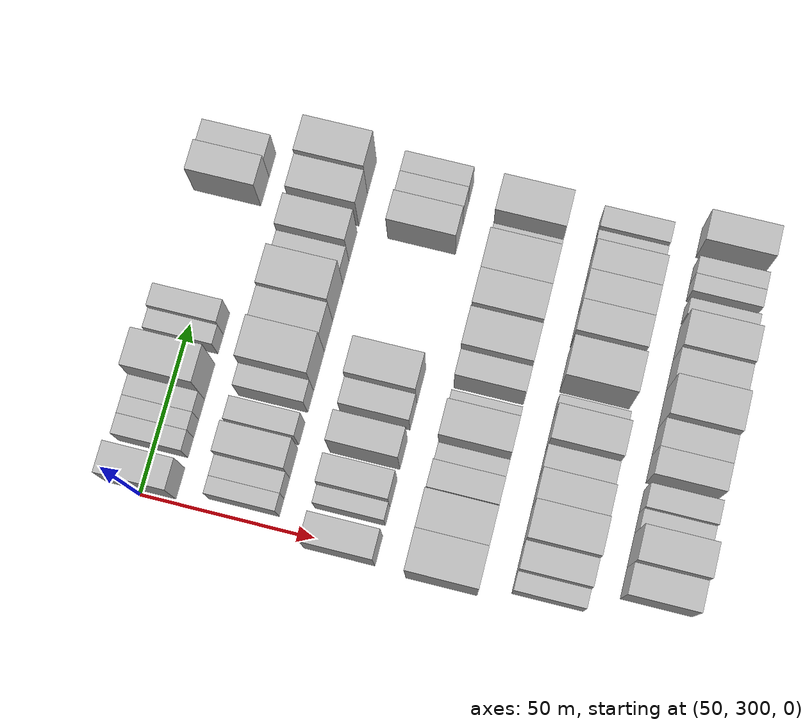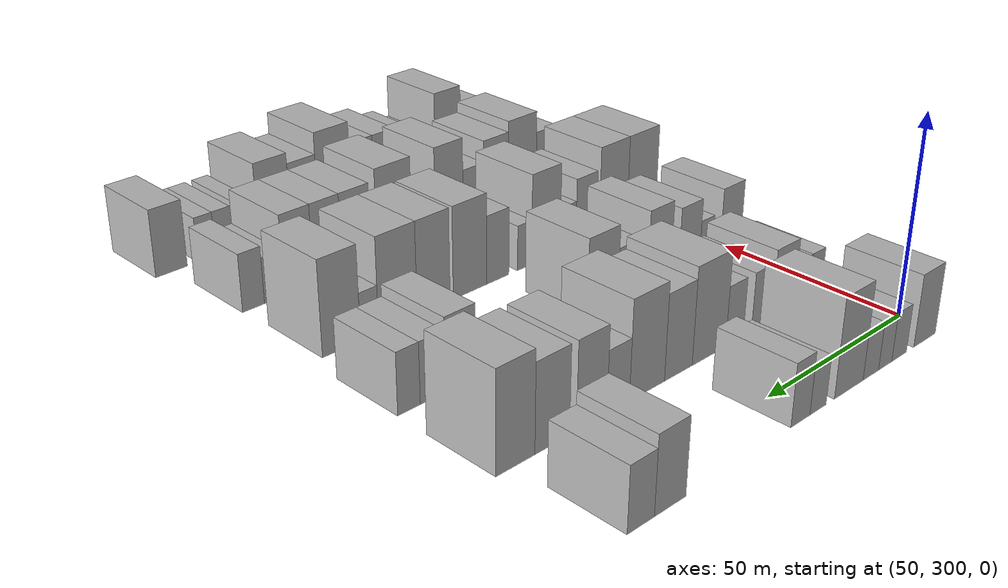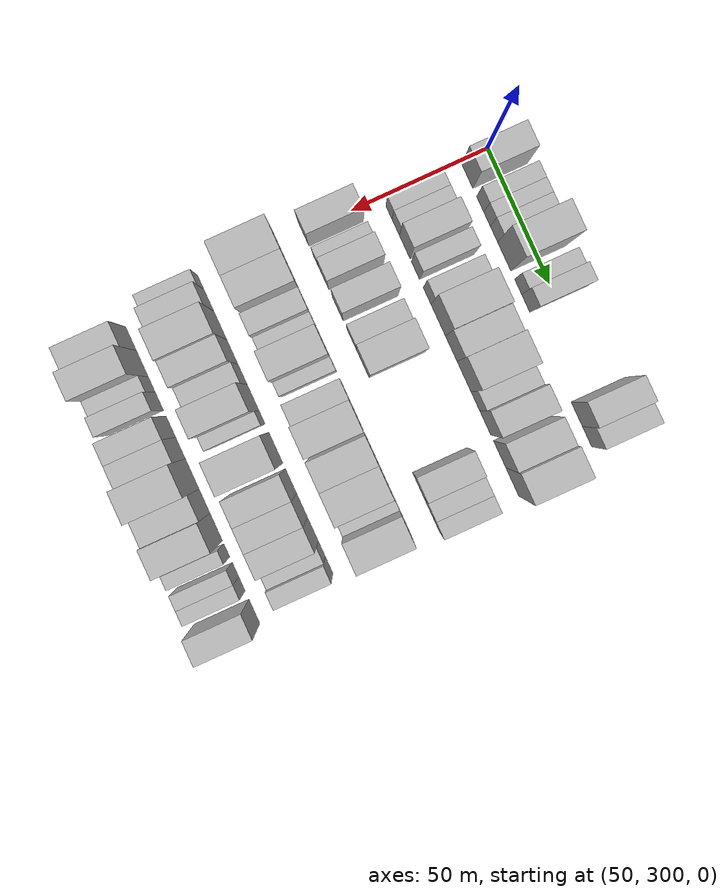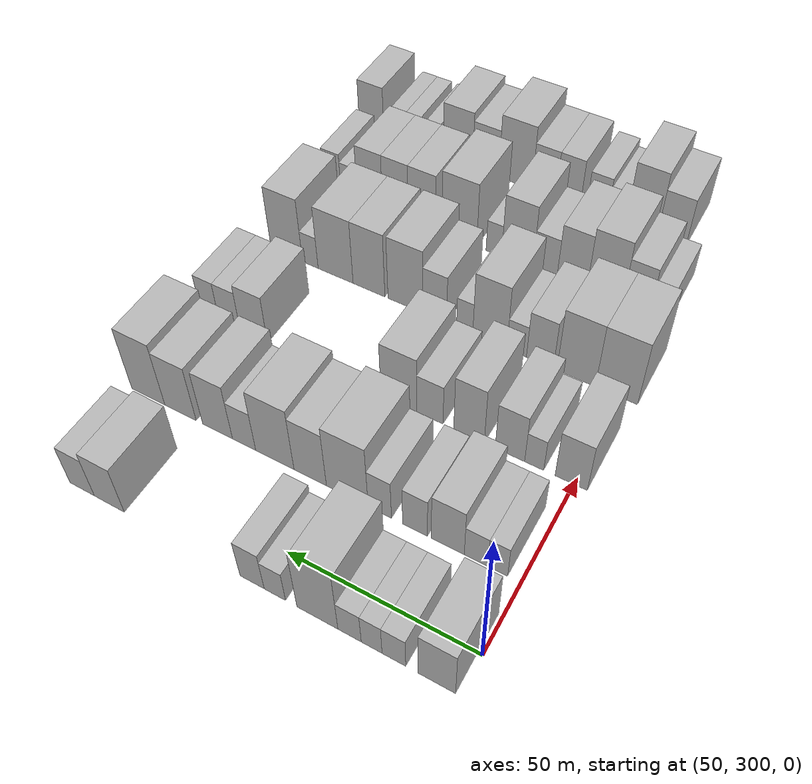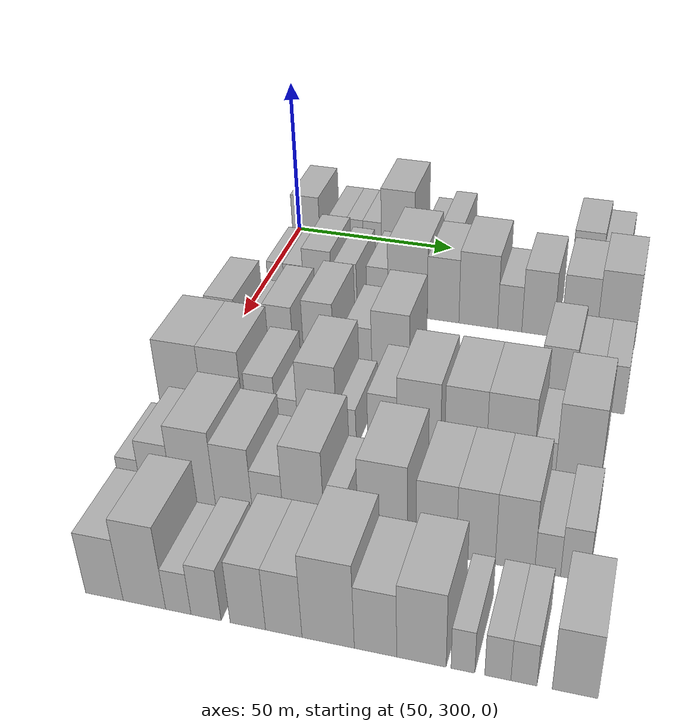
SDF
<sdf version="1.6">
 <world name="default">
  <model name="building_90">
   <static>1</static>
   <pose>50.0000 305.6751 0 0.000000 0.000000 0.000000</pose>
   <link name="link">
    <pose>0 0 9.00 0 0 0</pose>
    <collision name="collision"><geometry><box><size>20.0000 8.9293 18.0000</size></box></geometry></collision>
    <visual name="visual">
     <cast_shadows>0</cast_shadows>
     <geometry><box><size>20.0000 8.9293 18.0000</size></box></geometry>
     <material>
      <script>
       <uri>model://HANNAS_wall/materials/scripts</uri>
       <uri>model://HANNAS_wall/materials/textures</uri>
       <name>vrc/HANNAS_wall</name>
      </script>
     </material>
    </visual>
   </link>
  </model>
  <model name="building_91">
   <static>1</static>
   <pose>50.0000 316.0516 0 0.000000 0.000000 0.000000</pose>
   <link name="link">
    <pose>0 0 6.00 0 0 0</pose>
    <collision name="collision"><geometry><box><size>20.0000 5.8238 12.0000</size></box></geometry></collision>
    <visual name="visual">
     <cast_shadows>0</cast_shadows>
     <geometry><box><size>20.0000 5.8238 12.0000</size></box></geometry>
     <material>
      <script>
       <uri>model://HANNAS_wall/materials/scripts</uri>
       <uri>model://HANNAS_wall/materials/textures</uri>
       <name>vrc/HANNAS_wall</name>
      </script>
     </material>
    </visual>
   </link>
  </model>
  <model name="building_92">
   <static>1</static>
   <pose>50.0000 321.5552 0 0.000000 0.000000 0.000000</pose>
   <link name="link">
    <pose>0 0 6.00 0 0 0</pose>
    <collision name="collision"><geometry><box><size>20.0000 5.1832 12.0000</size></box></geometry></collision>
    <visual name="visual">
     <cast_shadows>0</cast_shadows>
     <geometry><box><size>20.0000 5.1832 12.0000</size></box></geometry>
     <material>
      <script>
       <uri>model://HANNAS_wall/materials/scripts</uri>
       <uri>model://HANNAS_wall/materials/textures</uri>
       <name>vrc/HANNAS_wall</name>
      </script>
     </material>
    </visual>
   </link>
  </model>
  <model name="building_93">
   <static>1</static>
   <pose>50.0000 327.1027 0 0.000000 0.000000 0.000000</pose>
   <link name="link">
    <pose>0 0 6.00 0 0 0</pose>
    <collision name="collision"><geometry><box><size>20.0000 5.9119 12.0000</size></box></geometry></collision>
    <visual name="visual">
     <cast_shadows>0</cast_shadows>
     <geometry><box><size>20.0000 5.9119 12.0000</size></box></geometry>
     <material>
      <script>
       <uri>model://HANNAS_wall/materials/scripts</uri>
       <uri>model://HANNAS_wall/materials/textures</uri>
       <name>vrc/HANNAS_wall</name>
      </script>
     </material>
    </visual>
   </link>
  </model>
  <model name="building_94">
   <static>1</static>
   <pose>50.0000 335.3535 0 0.000000 0.000000 0.000000</pose>
   <link name="link">
    <pose>0 0 12.00 0 0 0</pose>
    <collision name="collision"><geometry><box><size>20.0000 10.5897 24.0000</size></box></geometry></collision>
    <visual name="visual">
     <cast_shadows>0</cast_shadows>
     <geometry><box><size>20.0000 10.5897 24.0000</size></box></geometry>
     <material>
      <script>
       <uri>model://HANNAS_wall/materials/scripts</uri>
       <uri>model://HANNAS_wall/materials/textures</uri>
       <name>vrc/HANNAS_wall</name>
      </script>
     </material>
    </visual>
   </link>
  </model>
  <model name="building_95">
   <static>1</static>
   <pose>50.0000 346.4874 0 0.000000 0.000000 0.000000</pose>
   <link name="link">
    <pose>0 0 6.00 0 0 0</pose>
    <collision name="collision"><geometry><box><size>20.0000 5.6781 12.0000</size></box></geometry></collision>
    <visual name="visual">
     <cast_shadows>0</cast_shadows>
     <geometry><box><size>20.0000 5.6781 12.0000</size></box></geometry>
     <material>
      <script>
       <uri>model://HANNAS_wall/materials/scripts</uri>
       <uri>model://HANNAS_wall/materials/textures</uri>
       <name>vrc/HANNAS_wall</name>
      </script>
     </material>
    </visual>
   </link>
  </model>
  <model name="building_96">
   <static>1</static>
   <pose>50.0000 352.5926 0 0.000000 0.000000 0.000000</pose>
   <link name="link">
    <pose>0 0 7.50 0 0 0</pose>
    <collision name="collision"><geometry><box><size>20.0000 6.5322 15.0000</size></box></geometry></collision>
    <visual name="visual">
     <cast_shadows>0</cast_shadows>
     <geometry><box><size>20.0000 6.5322 15.0000</size></box></geometry>
     <material>
      <script>
       <uri>model://HANNAS_wall/materials/scripts</uri>
       <uri>model://HANNAS_wall/materials/textures</uri>
       <name>vrc/HANNAS_wall</name>
      </script>
     </material>
    </visual>
   </link>
  </model>
  <model name="building_97">
   <static>1</static>
   <pose>50.0000 393.3228 0 0.000000 0.000000 0.000000</pose>
   <link name="link">
    <pose>0 0 9.00 0 0 0</pose>
    <collision name="collision"><geometry><box><size>20.0000 8.9761 18.0000</size></box></geometry></collision>
    <visual name="visual">
     <cast_shadows>0</cast_shadows>
     <geometry><box><size>20.0000 8.9761 18.0000</size></box></geometry>
     <material>
      <script>
       <uri>model://HANNAS_wall/materials/scripts</uri>
       <uri>model://HANNAS_wall/materials/textures</uri>
       <name>vrc/HANNAS_wall</name>
      </script>
     </material>
    </visual>
   </link>
  </model>
  <model name="building_98">
   <static>1</static>
   <pose>50.0000 401.5481 0 0.000000 0.000000 0.000000</pose>
   <link name="link">
    <pose>0 0 7.50 0 0 0</pose>
    <collision name="collision"><geometry><box><size>20.0000 7.4744 15.0000</size></box></geometry></collision>
    <visual name="visual">
     <cast_shadows>0</cast_shadows>
     <geometry><box><size>20.0000 7.4744 15.0000</size></box></geometry>
     <material>
      <script>
       <uri>model://HANNAS_wall/materials/scripts</uri>
       <uri>model://HANNAS_wall/materials/textures</uri>
       <name>vrc/HANNAS_wall</name>
      </script>
     </material>
    </visual>
   </link>
  </model>
  <model name="building_197">
   <static>1</static>
   <pose>79.0000 305.9648 0 0.000000 0.000000 0.000000</pose>
   <link name="link">
    <pose>0 0 6.00 0 0 0</pose>
    <collision name="collision"><geometry><box><size>20.0000 5.0013 12.0000</size></box></geometry></collision>
    <visual name="visual">
     <cast_shadows>0</cast_shadows>
     <geometry><box><size>20.0000 5.0013 12.0000</size></box></geometry>
     <material>
      <script>
       <uri>model://HANNAS_wall/materials/scripts</uri>
       <uri>model://HANNAS_wall/materials/textures</uri>
       <name>vrc/HANNAS_wall</name>
      </script>
     </material>
    </visual>
   </link>
  </model>
  <model name="building_198">
   <static>1</static>
   <pose>79.0000 311.4459 0 0.000000 0.000000 0.000000</pose>
   <link name="link">
    <pose>0 0 6.00 0 0 0</pose>
    <collision name="collision"><geometry><box><size>20.0000 5.9608 12.0000</size></box></geometry></collision>
    <visual name="visual">
     <cast_shadows>0</cast_shadows>
     <geometry><box><size>20.0000 5.9608 12.0000</size></box></geometry>
     <material>
      <script>
       <uri>model://HANNAS_wall/materials/scripts</uri>
       <uri>model://HANNAS_wall/materials/textures</uri>
       <name>vrc/HANNAS_wall</name>
      </script>
     </material>
    </visual>
   </link>
  </model>
  <model name="building_199">
   <static>1</static>
   <pose>79.0000 318.7010 0 0.000000 0.000000 0.000000</pose>
   <link name="link">
    <pose>0 0 9.00 0 0 0</pose>
    <collision name="collision"><geometry><box><size>20.0000 8.5494 18.0000</size></box></geometry></collision>
    <visual name="visual">
     <cast_shadows>0</cast_shadows>
     <geometry><box><size>20.0000 8.5494 18.0000</size></box></geometry>
     <material>
      <script>
       <uri>model://HANNAS_wall/materials/scripts</uri>
       <uri>model://HANNAS_wall/materials/textures</uri>
       <name>vrc/HANNAS_wall</name>
      </script>
     </material>
    </visual>
   </link>
  </model>
  <model name="building_200">
   <static>1</static>
   <pose>79.0000 327.2561 0 0.000000 0.000000 0.000000</pose>
   <link name="link">
    <pose>0 0 7.50 0 0 0</pose>
    <collision name="collision"><geometry><box><size>20.0000 6.5608 15.0000</size></box></geometry></collision>
    <visual name="visual">
     <cast_shadows>0</cast_shadows>
     <geometry><box><size>20.0000 6.5608 15.0000</size></box></geometry>
     <material>
      <script>
       <uri>model://HANNAS_wall/materials/scripts</uri>
       <uri>model://HANNAS_wall/materials/textures</uri>
       <name>vrc/HANNAS_wall</name>
      </script>
     </material>
    </visual>
   </link>
  </model>
  <model name="building_201">
   <static>1</static>
   <pose>79.0000 336.6909 0 0.000000 0.000000 0.000000</pose>
   <link name="link">
    <pose>0 0 7.50 0 0 0</pose>
    <collision name="collision"><geometry><box><size>20.0000 6.3086 15.0000</size></box></geometry></collision>
    <visual name="visual">
     <cast_shadows>0</cast_shadows>
     <geometry><box><size>20.0000 6.3086 15.0000</size></box></geometry>
     <material>
      <script>
       <uri>model://HANNAS_wall/materials/scripts</uri>
       <uri>model://HANNAS_wall/materials/textures</uri>
       <name>vrc/HANNAS_wall</name>
      </script>
     </material>
    </visual>
   </link>
  </model>
  <model name="building_202">
   <static>1</static>
   <pose>79.0000 345.6385 0 0.000000 0.000000 0.000000</pose>
   <link name="link">
    <pose>0 0 12.00 0 0 0</pose>
    <collision name="collision"><geometry><box><size>20.0000 11.5867 24.0000</size></box></geometry></collision>
    <visual name="visual">
     <cast_shadows>0</cast_shadows>
     <geometry><box><size>20.0000 11.5867 24.0000</size></box></geometry>
     <material>
      <script>
       <uri>model://HANNAS_wall/materials/scripts</uri>
       <uri>model://HANNAS_wall/materials/textures</uri>
       <name>vrc/HANNAS_wall</name>
      </script>
     </material>
    </visual>
   </link>
  </model>
  <model name="building_203">
   <static>1</static>
   <pose>79.0000 356.0460 0 0.000000 0.000000 0.000000</pose>
   <link name="link">
    <pose>0 0 10.50 0 0 0</pose>
    <collision name="collision"><geometry><box><size>20.0000 9.2283 21.0000</size></box></geometry></collision>
    <visual name="visual">
     <cast_shadows>0</cast_shadows>
     <geometry><box><size>20.0000 9.2283 21.0000</size></box></geometry>
     <material>
      <script>
       <uri>model://HANNAS_wall/materials/scripts</uri>
       <uri>model://HANNAS_wall/materials/textures</uri>
       <name>vrc/HANNAS_wall</name>
      </script>
     </material>
    </visual>
   </link>
  </model>
  <model name="building_204">
   <static>1</static>
   <pose>79.0000 366.2448 0 0.000000 0.000000 0.000000</pose>
   <link name="link">
    <pose>0 0 12.00 0 0 0</pose>
    <collision name="collision"><geometry><box><size>20.0000 11.1693 24.0000</size></box></geometry></collision>
    <visual name="visual">
     <cast_shadows>0</cast_shadows>
     <geometry><box><size>20.0000 11.1693 24.0000</size></box></geometry>
     <material>
      <script>
       <uri>model://HANNAS_wall/materials/scripts</uri>
       <uri>model://HANNAS_wall/materials/textures</uri>
       <name>vrc/HANNAS_wall</name>
      </script>
     </material>
    </visual>
   </link>
  </model>
  <model name="building_205">
   <static>1</static>
   <pose>79.0000 375.2808 0 0.000000 0.000000 0.000000</pose>
   <link name="link">
    <pose>0 0 7.50 0 0 0</pose>
    <collision name="collision"><geometry><box><size>20.0000 6.9027 15.0000</size></box></geometry></collision>
    <visual name="visual">
     <cast_shadows>0</cast_shadows>
     <geometry><box><size>20.0000 6.9027 15.0000</size></box></geometry>
     <material>
      <script>
       <uri>model://HANNAS_wall/materials/scripts</uri>
       <uri>model://HANNAS_wall/materials/textures</uri>
       <name>vrc/HANNAS_wall</name>
      </script>
     </material>
    </visual>
   </link>
  </model>
  <model name="building_206">
   <static>1</static>
   <pose>79.0000 383.2599 0 0.000000 0.000000 0.000000</pose>
   <link name="link">
    <pose>0 0 10.50 0 0 0</pose>
    <collision name="collision"><geometry><box><size>20.0000 9.0555 21.0000</size></box></geometry></collision>
    <visual name="visual">
     <cast_shadows>0</cast_shadows>
     <geometry><box><size>20.0000 9.0555 21.0000</size></box></geometry>
     <material>
      <script>
       <uri>model://HANNAS_wall/materials/scripts</uri>
       <uri>model://HANNAS_wall/materials/textures</uri>
       <name>vrc/HANNAS_wall</name>
      </script>
     </material>
    </visual>
   </link>
  </model>
  <model name="building_207">
   <static>1</static>
   <pose>79.0000 394.6737 0 0.000000 0.000000 0.000000</pose>
   <link name="link">
    <pose>0 0 10.50 0 0 0</pose>
    <collision name="collision"><geometry><box><size>20.0000 9.7722 21.0000</size></box></geometry></collision>
    <visual name="visual">
     <cast_shadows>0</cast_shadows>
     <geometry><box><size>20.0000 9.7722 21.0000</size></box></geometry>
     <material>
      <script>
       <uri>model://HANNAS_wall/materials/scripts</uri>
       <uri>model://HANNAS_wall/materials/textures</uri>
       <name>vrc/HANNAS_wall</name>
      </script>
     </material>
    </visual>
   </link>
  </model>
  <model name="building_208">
   <static>1</static>
   <pose>79.0000 404.8303 0 0.000000 0.000000 0.000000</pose>
   <link name="link">
    <pose>0 0 12.00 0 0 0</pose>
    <collision name="collision"><geometry><box><size>20.0000 10.5410 24.0000</size></box></geometry></collision>
    <visual name="visual">
     <cast_shadows>0</cast_shadows>
     <geometry><box><size>20.0000 10.5410 24.0000</size></box></geometry>
     <material>
      <script>
       <uri>model://HANNAS_wall/materials/scripts</uri>
       <uri>model://HANNAS_wall/materials/textures</uri>
       <name>vrc/HANNAS_wall</name>
      </script>
     </material>
    </visual>
   </link>
  </model>
  <model name="building_307">
   <static>1</static>
   <pose>108.0000 300.9240 0 0.000000 0.000000 0.000000</pose>
   <link name="link">
    <pose>0 0 9.00 0 0 0</pose>
    <collision name="collision"><geometry><box><size>20.0000 8.3930 18.0000</size></box></geometry></collision>
    <visual name="visual">
     <cast_shadows>0</cast_shadows>
     <geometry><box><size>20.0000 8.3930 18.0000</size></box></geometry>
     <material>
      <script>
       <uri>model://HANNAS_wall/materials/scripts</uri>
       <uri>model://HANNAS_wall/materials/textures</uri>
       <name>vrc/HANNAS_wall</name>
      </script>
     </material>
    </visual>
   </link>
  </model>
  <model name="building_308">
   <static>1</static>
   <pose>108.0000 310.6613 0 0.000000 0.000000 0.000000</pose>
   <link name="link">
    <pose>0 0 6.00 0 0 0</pose>
    <collision name="collision"><geometry><box><size>20.0000 5.0818 12.0000</size></box></geometry></collision>
    <visual name="visual">
     <cast_shadows>0</cast_shadows>
     <geometry><box><size>20.0000 5.0818 12.0000</size></box></geometry>
     <material>
      <script>
       <uri>model://HANNAS_wall/materials/scripts</uri>
       <uri>model://HANNAS_wall/materials/textures</uri>
       <name>vrc/HANNAS_wall</name>
      </script>
     </material>
    </visual>
   </link>
  </model>
  <model name="building_309">
   <static>1</static>
   <pose>108.0000 317.1781 0 0.000000 0.000000 0.000000</pose>
   <link name="link">
    <pose>0 0 9.00 0 0 0</pose>
    <collision name="collision"><geometry><box><size>20.0000 7.9518 18.0000</size></box></geometry></collision>
    <visual name="visual">
     <cast_shadows>0</cast_shadows>
     <geometry><box><size>20.0000 7.9518 18.0000</size></box></geometry>
     <material>
      <script>
       <uri>model://HANNAS_wall/materials/scripts</uri>
       <uri>model://HANNAS_wall/materials/textures</uri>
       <name>vrc/HANNAS_wall</name>
      </script>
     </material>
    </visual>
   </link>
  </model>
  <model name="building_310">
   <static>1</static>
   <pose>108.0000 328.3875 0 0.000000 0.000000 0.000000</pose>
   <link name="link">
    <pose>0 0 10.50 0 0 0</pose>
    <collision name="collision"><geometry><box><size>20.0000 8.4671 21.0000</size></box></geometry></collision>
    <visual name="visual">
     <cast_shadows>0</cast_shadows>
     <geometry><box><size>20.0000 8.4671 21.0000</size></box></geometry>
     <material>
      <script>
       <uri>model://HANNAS_wall/materials/scripts</uri>
       <uri>model://HANNAS_wall/materials/textures</uri>
       <name>vrc/HANNAS_wall</name>
      </script>
     </material>
    </visual>
   </link>
  </model>
  <model name="building_311">
   <static>1</static>
   <pose>108.0000 339.3697 0 0.000000 0.000000 0.000000</pose>
   <link name="link">
    <pose>0 0 7.50 0 0 0</pose>
    <collision name="collision"><geometry><box><size>20.0000 7.4973 15.0000</size></box></geometry></collision>
    <visual name="visual">
     <cast_shadows>0</cast_shadows>
     <geometry><box><size>20.0000 7.4973 15.0000</size></box></geometry>
     <material>
      <script>
       <uri>model://HANNAS_wall/materials/scripts</uri>
       <uri>model://HANNAS_wall/materials/textures</uri>
       <name>vrc/HANNAS_wall</name>
      </script>
     </material>
    </visual>
   </link>
  </model>
  <model name="building_312">
   <static>1</static>
   <pose>108.0000 348.3044 0 0.000000 0.000000 0.000000</pose>
   <link name="link">
    <pose>0 0 10.50 0 0 0</pose>
    <collision name="collision"><geometry><box><size>20.0000 10.3722 21.0000</size></box></geometry></collision>
    <visual name="visual">
     <cast_shadows>0</cast_shadows>
     <geometry><box><size>20.0000 10.3722 21.0000</size></box></geometry>
     <material>
      <script>
       <uri>model://HANNAS_wall/materials/scripts</uri>
       <uri>model://HANNAS_wall/materials/textures</uri>
       <name>vrc/HANNAS_wall</name>
      </script>
     </material>
    </visual>
   </link>
  </model>
  <model name="building_313">
   <static>1</static>
   <pose>108.0000 392.6199 0 0.000000 0.000000 0.000000</pose>
   <link name="link">
    <pose>0 0 9.00 0 0 0</pose>
    <collision name="collision"><geometry><box><size>20.0000 8.7529 18.0000</size></box></geometry></collision>
    <visual name="visual">
     <cast_shadows>0</cast_shadows>
     <geometry><box><size>20.0000 8.7529 18.0000</size></box></geometry>
     <material>
      <script>
       <uri>model://HANNAS_wall/materials/scripts</uri>
       <uri>model://HANNAS_wall/materials/textures</uri>
       <name>vrc/HANNAS_wall</name>
      </script>
     </material>
    </visual>
   </link>
  </model>
  <model name="building_314">
   <static>1</static>
   <pose>108.0000 400.4461 0 0.000000 0.000000 0.000000</pose>
   <link name="link">
    <pose>0 0 7.50 0 0 0</pose>
    <collision name="collision"><geometry><box><size>20.0000 6.8993 15.0000</size></box></geometry></collision>
    <visual name="visual">
     <cast_shadows>0</cast_shadows>
     <geometry><box><size>20.0000 6.8993 15.0000</size></box></geometry>
     <material>
      <script>
       <uri>model://HANNAS_wall/materials/scripts</uri>
       <uri>model://HANNAS_wall/materials/textures</uri>
       <name>vrc/HANNAS_wall</name>
      </script>
     </material>
    </visual>
   </link>
  </model>
  <model name="building_315">
   <static>1</static>
   <pose>108.0000 406.9391 0 0.000000 0.000000 0.000000</pose>
   <link name="link">
    <pose>0 0 7.50 0 0 0</pose>
    <collision name="collision"><geometry><box><size>20.0000 6.0867 15.0000</size></box></geometry></collision>
    <visual name="visual">
     <cast_shadows>0</cast_shadows>
     <geometry><box><size>20.0000 6.0867 15.0000</size></box></geometry>
     <material>
      <script>
       <uri>model://HANNAS_wall/materials/scripts</uri>
       <uri>model://HANNAS_wall/materials/textures</uri>
       <name>vrc/HANNAS_wall</name>
      </script>
     </material>
    </visual>
   </link>
  </model>
  <model name="building_423">
   <static>1</static>
   <pose>137.0000 301.4023 0 0.000000 0.000000 0.000000</pose>
   <link name="link">
    <pose>0 0 12.00 0 0 0</pose>
    <collision name="collision"><geometry><box><size>20.0000 11.5409 24.0000</size></box></geometry></collision>
    <visual name="visual">
     <cast_shadows>0</cast_shadows>
     <geometry><box><size>20.0000 11.5409 24.0000</size></box></geometry>
     <material>
      <script>
       <uri>model://HANNAS_wall/materials/scripts</uri>
       <uri>model://HANNAS_wall/materials/textures</uri>
       <name>vrc/HANNAS_wall</name>
      </script>
     </material>
    </visual>
   </link>
  </model>
  <model name="building_424">
   <static>1</static>
   <pose>137.0000 312.5544 0 0.000000 0.000000 0.000000</pose>
   <link name="link">
    <pose>0 0 12.00 0 0 0</pose>
    <collision name="collision"><geometry><box><size>20.0000 10.7633 24.0000</size></box></geometry></collision>
    <visual name="visual">
     <cast_shadows>0</cast_shadows>
     <geometry><box><size>20.0000 10.7633 24.0000</size></box></geometry>
     <material>
      <script>
       <uri>model://HANNAS_wall/materials/scripts</uri>
       <uri>model://HANNAS_wall/materials/textures</uri>
       <name>vrc/HANNAS_wall</name>
      </script>
     </material>
    </visual>
   </link>
  </model>
  <model name="building_425">
   <static>1</static>
   <pose>137.0000 322.7856 0 0.000000 0.000000 0.000000</pose>
   <link name="link">
    <pose>0 0 9.00 0 0 0</pose>
    <collision name="collision"><geometry><box><size>20.0000 7.6990 18.0000</size></box></geometry></collision>
    <visual name="visual">
     <cast_shadows>0</cast_shadows>
     <geometry><box><size>20.0000 7.6990 18.0000</size></box></geometry>
     <material>
      <script>
       <uri>model://HANNAS_wall/materials/scripts</uri>
       <uri>model://HANNAS_wall/materials/textures</uri>
       <name>vrc/HANNAS_wall</name>
      </script>
     </material>
    </visual>
   </link>
  </model>
  <model name="building_426">
   <static>1</static>
   <pose>137.0000 329.4811 0 0.000000 0.000000 0.000000</pose>
   <link name="link">
    <pose>0 0 6.00 0 0 0</pose>
    <collision name="collision"><geometry><box><size>20.0000 5.6920 12.0000</size></box></geometry></collision>
    <visual name="visual">
     <cast_shadows>0</cast_shadows>
     <geometry><box><size>20.0000 5.6920 12.0000</size></box></geometry>
     <material>
      <script>
       <uri>model://HANNAS_wall/materials/scripts</uri>
       <uri>model://HANNAS_wall/materials/textures</uri>
       <name>vrc/HANNAS_wall</name>
      </script>
     </material>
    </visual>
   </link>
  </model>
  <model name="building_427">
   <static>1</static>
   <pose>137.0000 337.3532 0 0.000000 0.000000 0.000000</pose>
   <link name="link">
    <pose>0 0 12.00 0 0 0</pose>
    <collision name="collision"><geometry><box><size>20.0000 10.0523 24.0000</size></box></geometry></collision>
    <visual name="visual">
     <cast_shadows>0</cast_shadows>
     <geometry><box><size>20.0000 10.0523 24.0000</size></box></geometry>
     <material>
      <script>
       <uri>model://HANNAS_wall/materials/scripts</uri>
       <uri>model://HANNAS_wall/materials/textures</uri>
       <name>vrc/HANNAS_wall</name>
      </script>
     </material>
    </visual>
   </link>
  </model>
  <model name="building_428">
   <static>1</static>
   <pose>137.0000 344.8241 0 0.000000 0.000000 0.000000</pose>
   <link name="link">
    <pose>0 0 6.00 0 0 0</pose>
    <collision name="collision"><geometry><box><size>20.0000 4.8895 12.0000</size></box></geometry></collision>
    <visual name="visual">
     <cast_shadows>0</cast_shadows>
     <geometry><box><size>20.0000 4.8895 12.0000</size></box></geometry>
     <material>
      <script>
       <uri>model://HANNAS_wall/materials/scripts</uri>
       <uri>model://HANNAS_wall/materials/textures</uri>
       <name>vrc/HANNAS_wall</name>
      </script>
     </material>
    </visual>
   </link>
  </model>
  <model name="building_429">
   <static>1</static>
   <pose>137.0000 353.9391 0 0.000000 0.000000 0.000000</pose>
   <link name="link">
    <pose>0 0 9.00 0 0 0</pose>
    <collision name="collision"><geometry><box><size>20.0000 7.3405 18.0000</size></box></geometry></collision>
    <visual name="visual">
     <cast_shadows>0</cast_shadows>
     <geometry><box><size>20.0000 7.3405 18.0000</size></box></geometry>
     <material>
      <script>
       <uri>model://HANNAS_wall/materials/scripts</uri>
       <uri>model://HANNAS_wall/materials/textures</uri>
       <name>vrc/HANNAS_wall</name>
      </script>
     </material>
    </visual>
   </link>
  </model>
  <model name="building_430">
   <static>1</static>
   <pose>137.0000 363.0179 0 0.000000 0.000000 0.000000</pose>
   <link name="link">
    <pose>0 0 12.00 0 0 0</pose>
    <collision name="collision"><geometry><box><size>20.0000 10.8172 24.0000</size></box></geometry></collision>
    <visual name="visual">
     <cast_shadows>0</cast_shadows>
     <geometry><box><size>20.0000 10.8172 24.0000</size></box></geometry>
     <material>
      <script>
       <uri>model://HANNAS_wall/materials/scripts</uri>
       <uri>model://HANNAS_wall/materials/textures</uri>
       <name>vrc/HANNAS_wall</name>
      </script>
     </material>
    </visual>
   </link>
  </model>
  <model name="building_431">
   <static>1</static>
   <pose>137.0000 374.5184 0 0.000000 0.000000 0.000000</pose>
   <link name="link">
    <pose>0 0 12.00 0 0 0</pose>
    <collision name="collision"><geometry><box><size>20.0000 10.1837 24.0000</size></box></geometry></collision>
    <visual name="visual">
     <cast_shadows>0</cast_shadows>
     <geometry><box><size>20.0000 10.1837 24.0000</size></box></geometry>
     <material>
      <script>
       <uri>model://HANNAS_wall/materials/scripts</uri>
       <uri>model://HANNAS_wall/materials/textures</uri>
       <name>vrc/HANNAS_wall</name>
      </script>
     </material>
    </visual>
   </link>
  </model>
  <model name="building_432">
   <static>1</static>
   <pose>137.0000 385.3349 0 0.000000 0.000000 0.000000</pose>
   <link name="link">
    <pose>0 0 12.00 0 0 0</pose>
    <collision name="collision"><geometry><box><size>20.0000 11.4493 24.0000</size></box></geometry></collision>
    <visual name="visual">
     <cast_shadows>0</cast_shadows>
     <geometry><box><size>20.0000 11.4493 24.0000</size></box></geometry>
     <material>
      <script>
       <uri>model://HANNAS_wall/materials/scripts</uri>
       <uri>model://HANNAS_wall/materials/textures</uri>
       <name>vrc/HANNAS_wall</name>
      </script>
     </material>
    </visual>
   </link>
  </model>
  <model name="building_433">
   <static>1</static>
   <pose>137.0000 393.6599 0 0.000000 0.000000 0.000000</pose>
   <link name="link">
    <pose>0 0 6.00 0 0 0</pose>
    <collision name="collision"><geometry><box><size>20.0000 5.2007 12.0000</size></box></geometry></collision>
    <visual name="visual">
     <cast_shadows>0</cast_shadows>
     <geometry><box><size>20.0000 5.2007 12.0000</size></box></geometry>
     <material>
      <script>
       <uri>model://HANNAS_wall/materials/scripts</uri>
       <uri>model://HANNAS_wall/materials/textures</uri>
       <name>vrc/HANNAS_wall</name>
      </script>
     </material>
    </visual>
   </link>
  </model>
  <model name="building_434">
   <static>1</static>
   <pose>137.0000 401.5826 0 0.000000 0.000000 0.000000</pose>
   <link name="link">
    <pose>0 0 12.00 0 0 0</pose>
    <collision name="collision"><geometry><box><size>20.0000 10.6448 24.0000</size></box></geometry></collision>
    <visual name="visual">
     <cast_shadows>0</cast_shadows>
     <geometry><box><size>20.0000 10.6448 24.0000</size></box></geometry>
     <material>
      <script>
       <uri>model://HANNAS_wall/materials/scripts</uri>
       <uri>model://HANNAS_wall/materials/textures</uri>
       <name>vrc/HANNAS_wall</name>
      </script>
     </material>
    </visual>
   </link>
  </model>
  <model name="building_540">
   <static>1</static>
   <pose>166.0000 301.1731 0 0.000000 0.000000 0.000000</pose>
   <link name="link">
    <pose>0 0 6.00 0 0 0</pose>
    <collision name="collision"><geometry><box><size>20.0000 5.3502 12.0000</size></box></geometry></collision>
    <visual name="visual">
     <cast_shadows>0</cast_shadows>
     <geometry><box><size>20.0000 5.3502 12.0000</size></box></geometry>
     <material>
      <script>
       <uri>model://HANNAS_wall/materials/scripts</uri>
       <uri>model://HANNAS_wall/materials/textures</uri>
       <name>vrc/HANNAS_wall</name>
      </script>
     </material>
    </visual>
   </link>
  </model>
  <model name="building_541">
   <static>1</static>
   <pose>166.0000 307.7675 0 0.000000 0.000000 0.000000</pose>
   <link name="link">
    <pose>0 0 9.00 0 0 0</pose>
    <collision name="collision"><geometry><box><size>20.0000 7.8385 18.0000</size></box></geometry></collision>
    <visual name="visual">
     <cast_shadows>0</cast_shadows>
     <geometry><box><size>20.0000 7.8385 18.0000</size></box></geometry>
     <material>
      <script>
       <uri>model://HANNAS_wall/materials/scripts</uri>
       <uri>model://HANNAS_wall/materials/textures</uri>
       <name>vrc/HANNAS_wall</name>
      </script>
     </material>
    </visual>
   </link>
  </model>
  <model name="building_542">
   <static>1</static>
   <pose>166.0000 316.9592 0 0.000000 0.000000 0.000000</pose>
   <link name="link">
    <pose>0 0 12.00 0 0 0</pose>
    <collision name="collision"><geometry><box><size>20.0000 10.5450 24.0000</size></box></geometry></collision>
    <visual name="visual">
     <cast_shadows>0</cast_shadows>
     <geometry><box><size>20.0000 10.5450 24.0000</size></box></geometry>
     <material>
      <script>
       <uri>model://HANNAS_wall/materials/scripts</uri>
       <uri>model://HANNAS_wall/materials/textures</uri>
       <name>vrc/HANNAS_wall</name>
      </script>
     </material>
    </visual>
   </link>
  </model>
  <model name="building_543">
   <static>1</static>
   <pose>166.0000 326.7271 0 0.000000 0.000000 0.000000</pose>
   <link name="link">
    <pose>0 0 10.50 0 0 0</pose>
    <collision name="collision"><geometry><box><size>20.0000 8.9908 21.0000</size></box></geometry></collision>
    <visual name="visual">
     <cast_shadows>0</cast_shadows>
     <geometry><box><size>20.0000 8.9908 21.0000</size></box></geometry>
     <material>
      <script>
       <uri>model://HANNAS_wall/materials/scripts</uri>
       <uri>model://HANNAS_wall/materials/textures</uri>
       <name>vrc/HANNAS_wall</name>
      </script>
     </material>
    </visual>
   </link>
  </model>
  <model name="building_544">
   <static>1</static>
   <pose>166.0000 334.9126 0 0.000000 0.000000 0.000000</pose>
   <link name="link">
    <pose>0 0 7.50 0 0 0</pose>
    <collision name="collision"><geometry><box><size>20.0000 7.3802 15.0000</size></box></geometry></collision>
    <visual name="visual">
     <cast_shadows>0</cast_shadows>
     <geometry><box><size>20.0000 7.3802 15.0000</size></box></geometry>
     <material>
      <script>
       <uri>model://HANNAS_wall/materials/scripts</uri>
       <uri>model://HANNAS_wall/materials/textures</uri>
       <name>vrc/HANNAS_wall</name>
      </script>
     </material>
    </visual>
   </link>
  </model>
  <model name="building_545">
   <static>1</static>
   <pose>166.0000 343.4520 0 0.000000 0.000000 0.000000</pose>
   <link name="link">
    <pose>0 0 12.00 0 0 0</pose>
    <collision name="collision"><geometry><box><size>20.0000 9.6986 24.0000</size></box></geometry></collision>
    <visual name="visual">
     <cast_shadows>0</cast_shadows>
     <geometry><box><size>20.0000 9.6986 24.0000</size></box></geometry>
     <material>
      <script>
       <uri>model://HANNAS_wall/materials/scripts</uri>
       <uri>model://HANNAS_wall/materials/textures</uri>
       <name>vrc/HANNAS_wall</name>
      </script>
     </material>
    </visual>
   </link>
  </model>
  <model name="building_546">
   <static>1</static>
   <pose>166.0000 350.7534 0 0.000000 0.000000 0.000000</pose>
   <link name="link">
    <pose>0 0 6.00 0 0 0</pose>
    <collision name="collision"><geometry><box><size>20.0000 4.9042 12.0000</size></box></geometry></collision>
    <visual name="visual">
     <cast_shadows>0</cast_shadows>
     <geometry><box><size>20.0000 4.9042 12.0000</size></box></geometry>
     <material>
      <script>
       <uri>model://HANNAS_wall/materials/scripts</uri>
       <uri>model://HANNAS_wall/materials/textures</uri>
       <name>vrc/HANNAS_wall</name>
      </script>
     </material>
    </visual>
   </link>
  </model>
  <model name="building_547">
   <static>1</static>
   <pose>166.0000 361.8746 0 0.000000 0.000000 0.000000</pose>
   <link name="link">
    <pose>0 0 12.00 0 0 0</pose>
    <collision name="collision"><geometry><box><size>20.0000 11.3381 24.0000</size></box></geometry></collision>
    <visual name="visual">
     <cast_shadows>0</cast_shadows>
     <geometry><box><size>20.0000 11.3381 24.0000</size></box></geometry>
     <material>
      <script>
       <uri>model://HANNAS_wall/materials/scripts</uri>
       <uri>model://HANNAS_wall/materials/textures</uri>
       <name>vrc/HANNAS_wall</name>
      </script>
     </material>
    </visual>
   </link>
  </model>
  <model name="building_548">
   <static>1</static>
   <pose>166.0000 374.0827 0 0.000000 0.000000 0.000000</pose>
   <link name="link">
    <pose>0 0 10.50 0 0 0</pose>
    <collision name="collision"><geometry><box><size>20.0000 9.0781 21.0000</size></box></geometry></collision>
    <visual name="visual">
     <cast_shadows>0</cast_shadows>
     <geometry><box><size>20.0000 9.0781 21.0000</size></box></geometry>
     <material>
      <script>
       <uri>model://HANNAS_wall/materials/scripts</uri>
       <uri>model://HANNAS_wall/materials/textures</uri>
       <name>vrc/HANNAS_wall</name>
      </script>
     </material>
    </visual>
   </link>
  </model>
  <model name="building_549">
   <static>1</static>
   <pose>166.0000 382.9521 0 0.000000 0.000000 0.000000</pose>
   <link name="link">
    <pose>0 0 10.50 0 0 0</pose>
    <collision name="collision"><geometry><box><size>20.0000 8.6607 21.0000</size></box></geometry></collision>
    <visual name="visual">
     <cast_shadows>0</cast_shadows>
     <geometry><box><size>20.0000 8.6607 21.0000</size></box></geometry>
     <material>
      <script>
       <uri>model://HANNAS_wall/materials/scripts</uri>
       <uri>model://HANNAS_wall/materials/textures</uri>
       <name>vrc/HANNAS_wall</name>
      </script>
     </material>
    </visual>
   </link>
  </model>
  <model name="building_550">
   <static>1</static>
   <pose>166.0000 391.6158 0 0.000000 0.000000 0.000000</pose>
   <link name="link">
    <pose>0 0 10.50 0 0 0</pose>
    <collision name="collision"><geometry><box><size>20.0000 8.6667 21.0000</size></box></geometry></collision>
    <visual name="visual">
     <cast_shadows>0</cast_shadows>
     <geometry><box><size>20.0000 8.6667 21.0000</size></box></geometry>
     <material>
      <script>
       <uri>model://HANNAS_wall/materials/scripts</uri>
       <uri>model://HANNAS_wall/materials/textures</uri>
       <name>vrc/HANNAS_wall</name>
      </script>
     </material>
    </visual>
   </link>
  </model>
  <model name="building_551">
   <static>1</static>
   <pose>166.0000 398.7688 0 0.000000 0.000000 0.000000</pose>
   <link name="link">
    <pose>0 0 6.00 0 0 0</pose>
    <collision name="collision"><geometry><box><size>20.0000 5.6393 12.0000</size></box></geometry></collision>
    <visual name="visual">
     <cast_shadows>0</cast_shadows>
     <geometry><box><size>20.0000 5.6393 12.0000</size></box></geometry>
     <material>
      <script>
       <uri>model://HANNAS_wall/materials/scripts</uri>
       <uri>model://HANNAS_wall/materials/textures</uri>
       <name>vrc/HANNAS_wall</name>
      </script>
     </material>
    </visual>
   </link>
  </model>
  <model name="building_552">
   <static>1</static>
   <pose>166.0000 404.6654 0 0.000000 0.000000 0.000000</pose>
   <link name="link">
    <pose>0 0 7.50 0 0 0</pose>
    <collision name="collision"><geometry><box><size>20.0000 6.1541 15.0000</size></box></geometry></collision>
    <visual name="visual">
     <cast_shadows>0</cast_shadows>
     <geometry><box><size>20.0000 6.1541 15.0000</size></box></geometry>
     <material>
      <script>
       <uri>model://HANNAS_wall/materials/scripts</uri>
       <uri>model://HANNAS_wall/materials/textures</uri>
       <name>vrc/HANNAS_wall</name>
      </script>
     </material>
    </visual>
   </link>
  </model>
  <model name="building_653">
   <static>1</static>
   <pose>195.0000 308.5655 0 0.000000 0.000000 0.000000</pose>
   <link name="link">
    <pose>0 0 9.00 0 0 0</pose>
    <collision name="collision"><geometry><box><size>20.0000 8.6955 18.0000</size></box></geometry></collision>
    <visual name="visual">
     <cast_shadows>0</cast_shadows>
     <geometry><box><size>20.0000 8.6955 18.0000</size></box></geometry>
     <material>
      <script>
       <uri>model://HANNAS_wall/materials/scripts</uri>
       <uri>model://HANNAS_wall/materials/textures</uri>
       <name>vrc/HANNAS_wall</name>
      </script>
     </material>
    </visual>
   </link>
  </model>
  <model name="building_654">
   <static>1</static>
   <pose>195.0000 317.7503 0 0.000000 0.000000 0.000000</pose>
   <link name="link">
    <pose>0 0 12.00 0 0 0</pose>
    <collision name="collision"><geometry><box><size>20.0000 9.6742 24.0000</size></box></geometry></collision>
    <visual name="visual">
     <cast_shadows>0</cast_shadows>
     <geometry><box><size>20.0000 9.6742 24.0000</size></box></geometry>
     <material>
      <script>
       <uri>model://HANNAS_wall/materials/scripts</uri>
       <uri>model://HANNAS_wall/materials/textures</uri>
       <name>vrc/HANNAS_wall</name>
      </script>
     </material>
    </visual>
   </link>
  </model>
  <model name="building_655">
   <static>1</static>
   <pose>195.0000 325.4355 0 0.000000 0.000000 0.000000</pose>
   <link name="link">
    <pose>0 0 6.00 0 0 0</pose>
    <collision name="collision"><geometry><box><size>20.0000 5.6961 12.0000</size></box></geometry></collision>
    <visual name="visual">
     <cast_shadows>0</cast_shadows>
     <geometry><box><size>20.0000 5.6961 12.0000</size></box></geometry>
     <material>
      <script>
       <uri>model://HANNAS_wall/materials/scripts</uri>
       <uri>model://HANNAS_wall/materials/textures</uri>
       <name>vrc/HANNAS_wall</name>
      </script>
     </material>
    </visual>
   </link>
  </model>
  <model name="building_656">
   <static>1</static>
   <pose>195.0000 331.6319 0 0.000000 0.000000 0.000000</pose>
   <link name="link">
    <pose>0 0 7.50 0 0 0</pose>
    <collision name="collision"><geometry><box><size>20.0000 6.6966 15.0000</size></box></geometry></collision>
    <visual name="visual">
     <cast_shadows>0</cast_shadows>
     <geometry><box><size>20.0000 6.6966 15.0000</size></box></geometry>
     <material>
      <script>
       <uri>model://HANNAS_wall/materials/scripts</uri>
       <uri>model://HANNAS_wall/materials/textures</uri>
       <name>vrc/HANNAS_wall</name>
      </script>
     </material>
    </visual>
   </link>
  </model>
  <model name="building_657">
   <static>1</static>
   <pose>195.0000 340.8598 0 0.000000 0.000000 0.000000</pose>
   <link name="link">
    <pose>0 0 9.00 0 0 0</pose>
    <collision name="collision"><geometry><box><size>20.0000 7.7593 18.0000</size></box></geometry></collision>
    <visual name="visual">
     <cast_shadows>0</cast_shadows>
     <geometry><box><size>20.0000 7.7593 18.0000</size></box></geometry>
     <material>
      <script>
       <uri>model://HANNAS_wall/materials/scripts</uri>
       <uri>model://HANNAS_wall/materials/textures</uri>
       <name>vrc/HANNAS_wall</name>
      </script>
     </material>
    </visual>
   </link>
  </model>
  <model name="building_658">
   <static>1</static>
   <pose>195.0000 348.6808 0 0.000000 0.000000 0.000000</pose>
   <link name="link">
    <pose>0 0 9.00 0 0 0</pose>
    <collision name="collision"><geometry><box><size>20.0000 7.8828 18.0000</size></box></geometry></collision>
    <visual name="visual">
     <cast_shadows>0</cast_shadows>
     <geometry><box><size>20.0000 7.8828 18.0000</size></box></geometry>
     <material>
      <script>
       <uri>model://HANNAS_wall/materials/scripts</uri>
       <uri>model://HANNAS_wall/materials/textures</uri>
       <name>vrc/HANNAS_wall</name>
      </script>
     </material>
    </visual>
   </link>
  </model>
  <model name="building_659">
   <static>1</static>
   <pose>195.0000 358.1908 0 0.000000 0.000000 0.000000</pose>
   <link name="link">
    <pose>0 0 12.00 0 0 0</pose>
    <collision name="collision"><geometry><box><size>20.0000 11.1371 24.0000</size></box></geometry></collision>
    <visual name="visual">
     <cast_shadows>0</cast_shadows>
     <geometry><box><size>20.0000 11.1371 24.0000</size></box></geometry>
     <material>
      <script>
       <uri>model://HANNAS_wall/materials/scripts</uri>
       <uri>model://HANNAS_wall/materials/textures</uri>
       <name>vrc/HANNAS_wall</name>
      </script>
     </material>
    </visual>
   </link>
  </model>
  <model name="building_660">
   <static>1</static>
   <pose>195.0000 368.1835 0 0.000000 0.000000 0.000000</pose>
   <link name="link">
    <pose>0 0 9.00 0 0 0</pose>
    <collision name="collision"><geometry><box><size>20.0000 8.8484 18.0000</size></box></geometry></collision>
    <visual name="visual">
     <cast_shadows>0</cast_shadows>
     <geometry><box><size>20.0000 8.8484 18.0000</size></box></geometry>
     <material>
      <script>
       <uri>model://HANNAS_wall/materials/scripts</uri>
       <uri>model://HANNAS_wall/materials/textures</uri>
       <name>vrc/HANNAS_wall</name>
      </script>
     </material>
    </visual>
   </link>
  </model>
  <model name="building_661">
   <static>1</static>
   <pose>195.0000 377.6877 0 0.000000 0.000000 0.000000</pose>
   <link name="link">
    <pose>0 0 10.50 0 0 0</pose>
    <collision name="collision"><geometry><box><size>20.0000 10.1601 21.0000</size></box></geometry></collision>
    <visual name="visual">
     <cast_shadows>0</cast_shadows>
     <geometry><box><size>20.0000 10.1601 21.0000</size></box></geometry>
     <material>
      <script>
       <uri>model://HANNAS_wall/materials/scripts</uri>
       <uri>model://HANNAS_wall/materials/textures</uri>
       <name>vrc/HANNAS_wall</name>
      </script>
     </material>
    </visual>
   </link>
  </model>
  <model name="building_662">
   <static>1</static>
   <pose>195.0000 386.1719 0 0.000000 0.000000 0.000000</pose>
   <link name="link">
    <pose>0 0 6.00 0 0 0</pose>
    <collision name="collision"><geometry><box><size>20.0000 4.8083 12.0000</size></box></geometry></collision>
    <visual name="visual">
     <cast_shadows>0</cast_shadows>
     <geometry><box><size>20.0000 4.8083 12.0000</size></box></geometry>
     <material>
      <script>
       <uri>model://HANNAS_wall/materials/scripts</uri>
       <uri>model://HANNAS_wall/materials/textures</uri>
       <name>vrc/HANNAS_wall</name>
      </script>
     </material>
    </visual>
   </link>
  </model>
  <model name="building_663">
   <static>1</static>
   <pose>195.0000 393.1891 0 0.000000 0.000000 0.000000</pose>
   <link name="link">
    <pose>0 0 6.00 0 0 0</pose>
    <collision name="collision"><geometry><box><size>20.0000 5.2261 12.0000</size></box></geometry></collision>
    <visual name="visual">
     <cast_shadows>0</cast_shadows>
     <geometry><box><size>20.0000 5.2261 12.0000</size></box></geometry>
     <material>
      <script>
       <uri>model://HANNAS_wall/materials/scripts</uri>
       <uri>model://HANNAS_wall/materials/textures</uri>
       <name>vrc/HANNAS_wall</name>
      </script>
     </material>
    </visual>
   </link>
  </model>
  <model name="building_664">
   <static>1</static>
   <pose>195.0000 398.3840 0 0.000000 0.000000 0.000000</pose>
   <link name="link">
    <pose>0 0 6.00 0 0 0</pose>
    <collision name="collision"><geometry><box><size>20.0000 5.1636 12.0000</size></box></geometry></collision>
    <visual name="visual">
     <cast_shadows>0</cast_shadows>
     <geometry><box><size>20.0000 5.1636 12.0000</size></box></geometry>
     <material>
      <script>
       <uri>model://HANNAS_wall/materials/scripts</uri>
       <uri>model://HANNAS_wall/materials/textures</uri>
       <name>vrc/HANNAS_wall</name>
      </script>
     </material>
    </visual>
   </link>
  </model>
  <model name="building_665">
   <static>1</static>
   <pose>195.0000 408.4201 0 0.000000 0.000000 0.000000</pose>
   <link name="link">
    <pose>0 0 9.00 0 0 0</pose>
    <collision name="collision"><geometry><box><size>20.0000 8.9086 18.0000</size></box></geometry></collision>
    <visual name="visual">
     <cast_shadows>0</cast_shadows>
     <geometry><box><size>20.0000 8.9086 18.0000</size></box></geometry>
     <material>
      <script>
       <uri>model://HANNAS_wall/materials/scripts</uri>
       <uri>model://HANNAS_wall/materials/textures</uri>
       <name>vrc/HANNAS_wall</name>
      </script>
     </material>
    </visual>
   </link>
  </model>
 </world>
</sdf>
